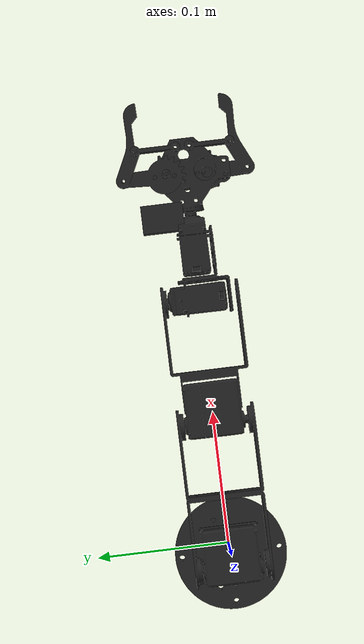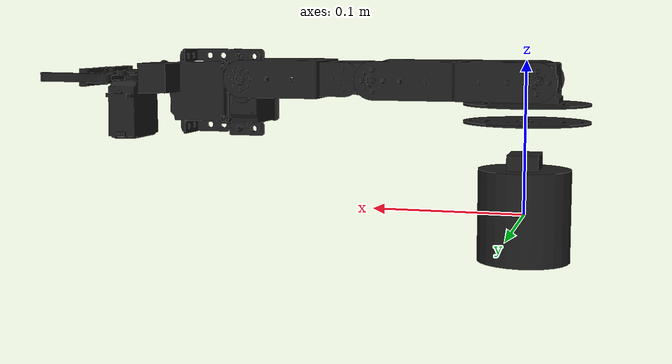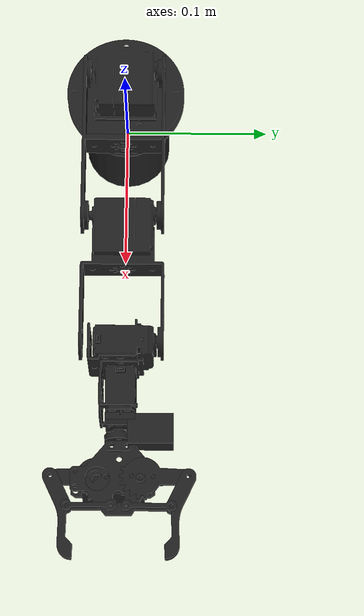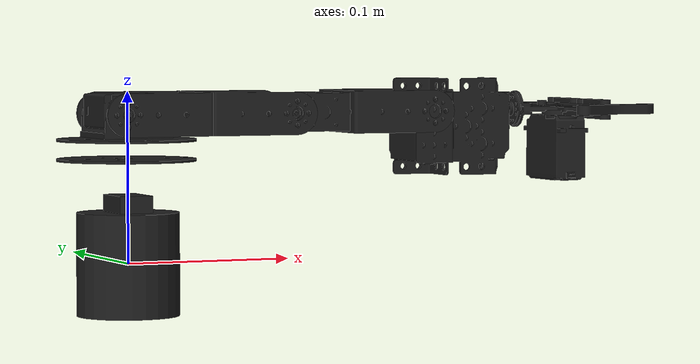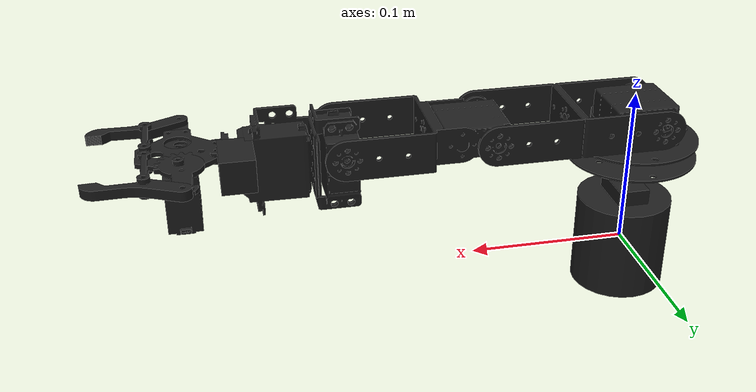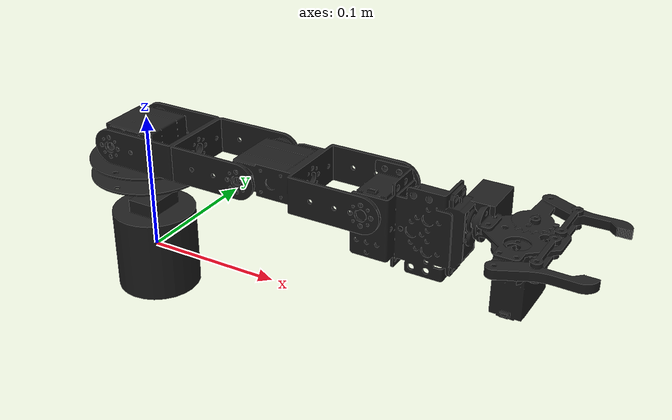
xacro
<?xml version="1.0"?>
<robot xmlns:xacro="http://www.ros.org/wiki/xacro" name="learm">
    <xacro:arg name="initial_positions_file" default="initial_positions.yaml" />

    <!-- Import learm urdf file -->
    <xacro:include filename="$(find ardupilot_gz_description)/models/learm/model.urdf" />

    <!-- Import control_xacro -->
    <xacro:include filename="learm.ros2_control.xacro" />

    <xacro:learm_ros2_control name="FakeSystem" initial_positions_file="$(arg initial_positions_file)"/>

</robot>

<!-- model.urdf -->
<robot name="learm">
    <link name="arm_base_link">
        <inertial>
            <mass value="0.0342685"/>
            <origin xyz="0 0 0" rpy="0 -0 0"/>
            <inertia ixx="1.7991e-05" ixy="0" ixz="0" iyy="1.7991e-05" iyz="0" izz="1.54208e-05"/>
        </inertial>
        <visual>
            <origin xyz="0 0 0" rpy="0 -0 0"/>
            <geometry>
                <cylinder radius="0.03" length="0.06"/>
            </geometry>
            <material name="arm_base_linkarm_base_link_visual">
                <texture/>
                <color rgba="0.12 0.12 0.12 1.2"/>
            </material>
        </visual>
        <collision>
            <origin xyz="0 0 0" rpy="0 -0 0"/>
            <geometry>
                <cylinder radius="0.03" length="0.06"/>
            </geometry>
        </collision>
    </link>
    <link name="camera_link">
        <inertial>
            <mass value="0.01212"/>
            <origin xyz="0 0 0" rpy="0 -0 0"/>
            <inertia ixx="1.313e-06" ixy="0" ixz="0" iyy="8.08e-07" iyz="0" izz="1.313e-06"/>
        </inertial>
        <visual>
            <origin xyz="0 0 0" rpy="0 -0 0"/>
            <geometry>
                <box size="0.02 0.03 0.02"/>
            </geometry>
            <material name="camera_linkcamera_link_visual">
                <texture/>
                <color rgba="0.12 0.12 0.12 1.2"/>
            </material>
        </visual>
    </link>
    <link name="camera_wrist_link">
        <inertial>
            <mass value="0.01212"/>
            <origin xyz="-2.77556e-17 0 0" rpy="0 2.02931e-17 0"/>
            <inertia ixx="1.313e-06" ixy="0" ixz="0" iyy="8.08e-07" iyz="0" izz="1.313e-06"/>
        </inertial>
        <visual>
            <origin xyz="-5.55112e-17 0 5.63246e-34" rpy="0 4.05861e-17 0"/>
            <geometry>
                <box size="0.02 0.03 0.02"/>
            </geometry>
            <material name="camera_wrist_linkcamera_wrist_link_visual">
                <texture/>
                <color rgba="0.12 0.12 0.12 1.2"/>
            </material>
        </visual>
    </link>
    <link name="finger_left_link">
        <inertial>
            <mass value="0.00303"/>
            <origin xyz="5.07327e-19 -0.01 0.025" rpy="5.02256e-34 2.02931e-17 -4.57939e-34"/>
            <inertia ixx="9.3425e-07" ixy="0" ixz="0" iyy="9.15313e-07" iyz="0" izz="3.15625e-08"/>
        </inertial>
        <visual>
            <origin xyz="3.17759e-51 1.38778e-17 3.4851e-51" rpy="1.00451e-33 4.05861e-17 -9.15878e-34"/>
            <geometry>
                <mesh filename="package://ardupilot_gz_description/models/learm/meshes/finger.stl" scale="1 1 1"/>
            </geometry>
            <material name="finger_left_linkfinger_left_link_visual">
                <texture/>
                <color rgba="0.12 0.12 0.12 1.2"/>
            </material>
        </visual>
        <collision>
            <origin xyz="1.01465e-18 -0.01 0.025" rpy="1.00451e-33 4.05861e-17 -9.15878e-34"/>
            <geometry>
                <box size="0.005 0.01 0.06"/>
            </geometry>
        </collision>
    </link>
    <link name="finger_right_link">
        <inertial>
            <mass value="0.00303"/>
            <origin xyz="5.07327e-19 0.01 0.025" rpy="-5.02256e-34 2.02931e-17 4.57939e-34"/>
            <inertia ixx="9.3425e-07" ixy="0" ixz="0" iyy="9.15313e-07" iyz="0" izz="3.15625e-08"/>
        </inertial>
        <visual>
            <origin xyz="3.17759e-51 -1.38778e-17 3.4851e-51" rpy="1.07699e-22 -4.05861e-17 3.14159"/>
            <geometry>
                <mesh filename="package://ardupilot_gz_description/models/learm/meshes/finger.stl" scale="1 1 1"/>
            </geometry>
            <material name="finger_right_linkfinger_right_link_visual">
                <texture/>
                <color rgba="0.12 0.12 0.12 1.2"/>
            </material>
        </visual>
        <collision>
            <origin xyz="1.01465e-18 0.01 0.025" rpy="1.07699e-22 -4.05861e-17 3.14159"/>
            <geometry>
                <box size="0.005 0.01 0.06"/>
            </geometry>
        </collision>
    </link>
    <link name="forearm_link">
        <inertial>
            <mass value="0.0396626"/>
            <origin xyz="2.02931e-19 0 0.01" rpy="0 2.02931e-17 0"/>
            <inertia ixx="1.35514e-05" ixy="0" ixz="0" iyy="1.03288e-05" iyz="0" izz="7.35411e-06"/>
        </inertial>
        <visual>
            <origin xyz="2.81623e-34 0 2.77556e-17" rpy="0 4.05861e-17 0"/>
            <geometry>
                <mesh filename="package://ardupilot_gz_description/models/learm/meshes/forearm.stl" scale="1 1 1"/>
            </geometry>
            <material name="forearm_linkforearm_link_visual">
                <texture/>
                <color rgba="0.12 0.12 0.12 1.2"/>
            </material>
        </visual>
        <collision>
            <origin xyz="4.05861e-19 0 0.01" rpy="0 4.05861e-17 0"/>
            <geometry>
                <box size="0.025 0.04 0.05"/>
            </geometry>
        </collision>
    </link>
    <link name="grip_left_link">
        <inertial>
            <mass value="0.0037875"/>
            <origin xyz="-9.73036e-17 -5.5588e-17 0.01" rpy="7.68484e-18 -1.59098e-17 4.78263e-17"/>
            <inertia ixx="8.60078e-07" ixy="0" ixz="0" iyy="7.96953e-07" iyz="0" izz="7.89063e-08"/>
        </inertial>
        <visual>
            <origin xyz="-1.94289e-16 -1.11022e-16 -5.20417e-17" rpy="1.53697e-17 -3.18197e-17 9.56526e-17"/>
            <geometry>
                <mesh filename="package://ardupilot_gz_description/models/learm/meshes/carpal-left.stl" scale="1 1 1"/>
            </geometry>
            <material name="grip_left_linkgrip_left_link_visual">
                <texture/>
                <color rgba="0.12 0.12 0.12 1.2"/>
            </material>
        </visual>
        <collision>
            <origin xyz="-1.94607e-16 -1.11176e-16 0.01" rpy="1.53697e-17 -3.18197e-17 9.56526e-17"/>
            <geometry>
                <box size="0.005 0.015 0.05"/>
            </geometry>
        </collision>
    </link>
    <link name="grip_right_link">
        <inertial>
            <mass value="0.0037875"/>
            <origin xyz="-9.73036e-17 5.5588e-17 0.01" rpy="-7.68484e-18 -1.59098e-17 -4.78263e-17"/>
            <inertia ixx="8.60078e-07" ixy="0" ixz="0" iyy="7.96953e-07" iyz="0" izz="7.89063e-08"/>
        </inertial>
        <visual>
            <origin xyz="-1.94289e-16 1.11022e-16 -5.20417e-17" rpy="-1.53697e-17 -3.18197e-17 -9.56526e-17"/>
            <geometry>
                <mesh filename="package://ardupilot_gz_description/models/learm/meshes/carpal-right.stl" scale="1 1 1"/>
            </geometry>
            <material name="grip_right_linkgrip_right_link_visual">
                <texture/>
                <color rgba="0.12 0.12 0.12 1.2"/>
            </material>
        </visual>
        <collision>
            <origin xyz="-1.94607e-16 1.11176e-16 0.01" rpy="-1.53697e-17 -3.18197e-17 -9.56526e-17"/>
            <geometry>
                <box size="0.005 0.015 0.05"/>
            </geometry>
        </collision>
    </link>
    <link name="hand_link">
        <inertial>
            <mass value="0.06464"/>
            <origin xyz="0.02 0 0.03" rpy="0 2.02931e-17 0"/>
            <inertia ixx="1.72373e-05" ixy="0" ixz="0" iyy="1.72373e-05" iyz="0" izz="1.72373e-05"/>
        </inertial>
        <visual>
            <origin xyz="-5.55112e-17 0 5.63246e-34" rpy="0 4.05861e-17 0"/>
            <geometry>
                <mesh filename="package://ardupilot_gz_description/models/learm/meshes/hand.stl" scale="1 1 1"/>
            </geometry>
            <material name="hand_linkhand_link_visual">
                <texture/>
                <color rgba="0.12 0.12 0.12 1.2"/>
            </material>
        </visual>
        <collision>
            <origin xyz="0.02 0 0.03" rpy="0 4.05861e-17 0"/>
            <geometry>
                <box size="0.04 0.04 0.04"/>
            </geometry>
        </collision>
    </link>
    <link name="humerus_link">
        <inertial>
            <mass value="0.0198313"/>
            <origin xyz="6.08792e-19 0 0.03" rpy="0 2.02931e-17 0"/>
            <inertia ixx="2.23515e-05" ixy="0" ixz="0" iyy="1.92529e-05" iyz="0" izz="5.1644e-06"/>
        </inertial>
        <visual>
            <origin xyz="-7.04057e-35 0 -6.93889e-18" rpy="0 4.05861e-17 0"/>
            <geometry>
                <mesh filename="package://ardupilot_gz_description/models/learm/meshes/humerus.stl" scale="1 1 1"/>
            </geometry>
            <material name="humerus_linkhumerus_link_visual">
                <texture/>
                <color rgba="0.12 0.12 0.12 1.2"/>
            </material>
        </visual>
        <collision>
            <origin xyz="1.21758e-18 0 0.03" rpy="0 4.05861e-17 0"/>
            <geometry>
                <box size="0.025 0.05 0.105"/>
            </geometry>
        </collision>
    </link>
    <link name="shoulder_link">
        <inertial>
            <mass value="0.02424"/>
            <origin xyz="0 0 0" rpy="0 -0 0"/>
            <inertia ixx="5.05e-06" ixy="0" ixz="0" iyy="5.05e-06" iyz="0" izz="6.464e-06"/>
        </inertial>
        <visual>
            <origin xyz="0 0 0" rpy="0 -0 0"/>
            <geometry>
                <mesh filename="package://ardupilot_gz_description/models/learm/meshes/shoulder.stl" scale="1 1 1"/>
            </geometry>
            <material name="shoulder_linkshoulder_link_visual">
                <texture/>
                <color rgba="0.12 0.12 0.12 1.2"/>
            </material>
        </visual>
        <collision>
            <origin xyz="0 0 0" rpy="0 -0 0"/>
            <geometry>
                <box size="0.04 0.04 0.03"/>
            </geometry>
        </collision>
    </link>
    <link name="tendon_left_link">
        <inertial>
            <mass value="0.00202"/>
            <origin xyz="-1.80729e-16 -1.66687e-16 0.02" rpy="7.68484e-18 -1.59098e-17 4.78263e-17"/>
            <inertia ixx="2.86167e-07" ixy="0" ixz="0" iyy="2.73542e-07" iyz="0" izz="2.10417e-08"/>
        </inertial>
        <visual>
            <origin xyz="-3.60822e-16 -3.33067e-16 -7.97973e-17" rpy="1.53697e-17 -3.18197e-17 9.56526e-17"/>
            <geometry>
                <mesh filename="package://ardupilot_gz_description/models/learm/meshes/tendon.stl" scale="1 1 1"/>
            </geometry>
            <material name="tendon_left_linktendon_left_link_visual">
                <texture/>
                <color rgba="0.12 0.12 0.12 1.2"/>
            </material>
        </visual>
        <collision>
            <origin xyz="-3.61459e-16 -3.33374e-16 0.02" rpy="1.53697e-17 -3.18197e-17 9.56526e-17"/>
            <geometry>
                <box size="0.005 0.01 0.04"/>
            </geometry>
        </collision>
    </link>
    <link name="tendon_right_link">
        <inertial>
            <mass value="0.00202"/>
            <origin xyz="-1.80729e-16 1.66687e-16 0.02" rpy="-7.68484e-18 -1.59098e-17 -4.78263e-17"/>
            <inertia ixx="2.86167e-07" ixy="0" ixz="0" iyy="2.73542e-07" iyz="0" izz="2.10417e-08"/>
        </inertial>
        <visual>
            <origin xyz="-3.60822e-16 3.33067e-16 -7.97973e-17" rpy="-1.53697e-17 -3.18197e-17 -9.56526e-17"/>
            <geometry>
                <mesh filename="package://ardupilot_gz_description/models/learm/meshes/tendon.stl" scale="1 1 1"/>
            </geometry>
            <material name="tendon_right_linktendon_right_link_visual">
                <texture/>
                <color rgba="0.12 0.12 0.12 1.2"/>
            </material>
        </visual>
        <collision>
            <origin xyz="-3.61459e-16 3.33374e-16 0.02" rpy="-1.53697e-17 -3.18197e-17 -9.56526e-17"/>
            <geometry>
                <box size="0.005 0.01 0.04"/>
            </geometry>
        </collision>
    </link>
    <link name="wrist_link">
        <inertial>
            <mass value="0.07272"/>
            <origin xyz="0.01 0 0.02" rpy="0 2.02931e-17 0"/>
            <inertia ixx="2.727e-05" ixy="0" ixz="0" iyy="3.1512e-05" iyz="0" izz="1.515e-05"/>
        </inertial>
        <visual>
            <origin xyz="2.77556e-17 0 -5.55112e-17" rpy="0 4.05861e-17 0"/>
            <geometry>
                <mesh filename="package://ardupilot_gz_description/models/learm/meshes/wrist.stl" scale="1 1 1"/>
            </geometry>
            <material name="wrist_linkwrist_link_visual">
                <texture/>
                <color rgba="0.12 0.12 0.12 1.2"/>
            </material>
        </visual>
        <collision>
            <origin xyz="0.01 0 0.02" rpy="0 4.05861e-17 0"/>
            <geometry>
                <box size="0.04 0.03 0.06"/>
            </geometry>
        </collision>
    </link>
    <joint name="camera_base_joint" type="fixed">
        <origin xyz="0 0 0.03" rpy="0 -0 0"/>
        <axis xyz="0 0 0"/>
        <parent link="arm_base_link"/>
        <child link="camera_link"/>
    </joint>
    <joint name="camera_wrist_joint" type="fixed">
        <origin xyz="-2.77556e-17 0.02 0" rpy="0 2.02931e-17 0"/>
        <axis xyz="0 0 0"/>
        <parent link="hand_link"/>
        <child link="camera_wrist_link"/>
    </joint>
    <joint name="elbow" type="revolute">
        <origin xyz="-1.38778e-17 0 0.105" rpy="0 2.02931e-17 0"/>
        <axis xyz="0 -1 0"/>
        <parent link="humerus_link"/>
        <child link="forearm_link"/>
        <dynamics damping="0.04" friction="0"/>
        <limit effort="inf" velocity="inf" lower="-1.57" upper="1.57"/>
    </joint>
    <joint name="finger_left" type="revolute">
        <origin xyz="-8.32667e-17 -5.55112e-17 0.03" rpy="1.57 -2.31183e-18 -1.22229e-16"/>
        <axis xyz="-1 4.57939e-34 2.02931e-17"/>
        <parent link="grip_left_link"/>
        <child link="finger_left_link"/>
        <dynamics damping="0.01" friction="0"/>
        <limit effort="inf" velocity="inf" lower="-inf" upper="inf"/>
    </joint>
    <joint name="finger_right" type="revolute">
        <origin xyz="-8.32667e-17 5.55112e-17 0.03" rpy="-1.57 -2.31183e-18 1.22229e-16"/>
        <axis xyz="1 4.57939e-34 -2.02931e-17"/>
        <parent link="grip_right_link"/>
        <child link="finger_right_link"/>
        <dynamics damping="0.01" friction="0"/>
        <limit effort="inf" velocity="inf" lower="-inf" upper="inf"/>
    </joint>
    <joint name="grip_left" type="revolute">
        <origin xyz="-2.77556e-17 0.015 0.03" rpy="-1.57 6.15908e-17 -4.36179e-17"/>
        <axis xyz="1 4.78263e-17 1.59098e-17"/>
        <parent link="hand_link"/>
        <child link="grip_left_link"/>
        <dynamics damping="0.01" friction="0"/>
        <limit effort="inf" velocity="inf" lower="0" upper="1.57"/>
    </joint>
    <joint name="grip_right" type="revolute">
        <origin xyz="-2.77556e-17 -0.015 0.03" rpy="1.57 6.15908e-17 4.36179e-17"/>
        <axis xyz="-1 4.78263e-17 -1.59098e-17"/>
        <parent link="hand_link"/>
        <child link="grip_right_link"/>
        <dynamics damping="0.01" friction="0"/>
        <limit effort="inf" velocity="inf" lower="0" upper="1.57"/>
    </joint>
    <joint name="shoulder_lift" type="revolute">
        <origin xyz="-0.01 0 0.028" rpy="0 1.5708 -0"/>
        <axis xyz="0 1 0"/>
        <parent link="shoulder_link"/>
        <child link="humerus_link"/>
        <dynamics damping="0.01" friction="0"/>
        <limit effort="inf" velocity="inf" lower="-3.142" upper="0"/>
    </joint>
    <joint name="shoulder_pan" type="revolute">
        <origin xyz="0 0 0.059" rpy="0 -0 0"/>
        <axis xyz="0 0 1"/>
        <parent link="arm_base_link"/>
        <child link="shoulder_link"/>
        <dynamics damping="0.01" friction="0"/>
        <limit effort="inf" velocity="inf" lower="-1.57" upper="1.57"/>
    </joint>
    <joint name="tendon_left" type="revolute">
        <origin xyz="-5.55112e-17 0.005 0.05" rpy="-1.57 6.15908e-17 -4.36179e-17"/>
        <axis xyz="1 4.78263e-17 1.59098e-17"/>
        <parent link="hand_link"/>
        <child link="tendon_left_link"/>
        <dynamics damping="0.01" friction="0"/>
        <limit effort="inf" velocity="inf" lower="-inf" upper="inf"/>
    </joint>
    <joint name="tendon_right" type="revolute">
        <origin xyz="-5.55112e-17 -0.005 0.05" rpy="1.57 6.15908e-17 4.36179e-17"/>
        <axis xyz="-1 4.78263e-17 -1.59098e-17"/>
        <parent link="hand_link"/>
        <child link="tendon_right_link"/>
        <dynamics damping="0.01" friction="0"/>
        <limit effort="inf" velocity="inf" lower="-inf" upper="inf"/>
    </joint>
    <joint name="wrist_flex" type="revolute">
        <origin xyz="-1.38778e-17 0 0.09" rpy="0 2.02931e-17 0"/>
        <axis xyz="0 -1 0"/>
        <parent link="forearm_link"/>
        <child link="wrist_link"/>
        <dynamics damping="0.04" friction="0"/>
        <limit effort="inf" velocity="inf" lower="-1.57" upper="1.57"/>
    </joint>
    <joint name="wrist_roll" type="revolute">
        <origin xyz="4.16334e-17 0 0.06" rpy="0 2.02931e-17 0"/>
        <axis xyz="2.02931e-17 0 1"/>
        <parent link="wrist_link"/>
        <child link="hand_link"/>
        <dynamics damping="0.04" friction="0"/>
        <limit effort="inf" velocity="inf" lower="-1.57" upper="1.57"/>
    </joint>
</robot>
